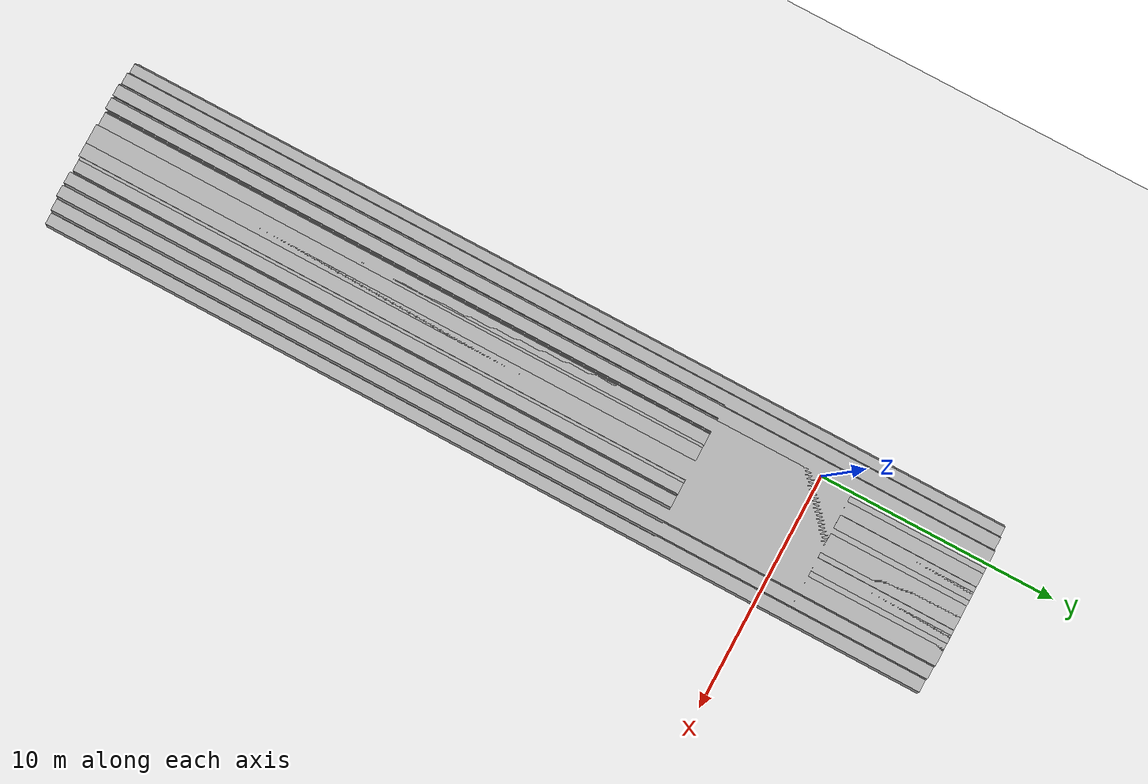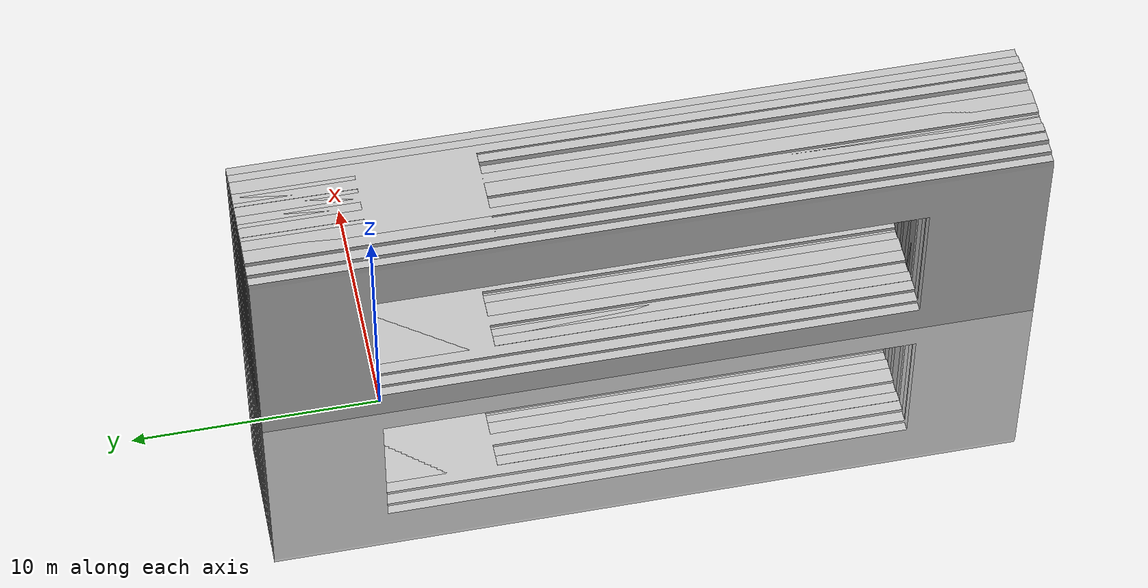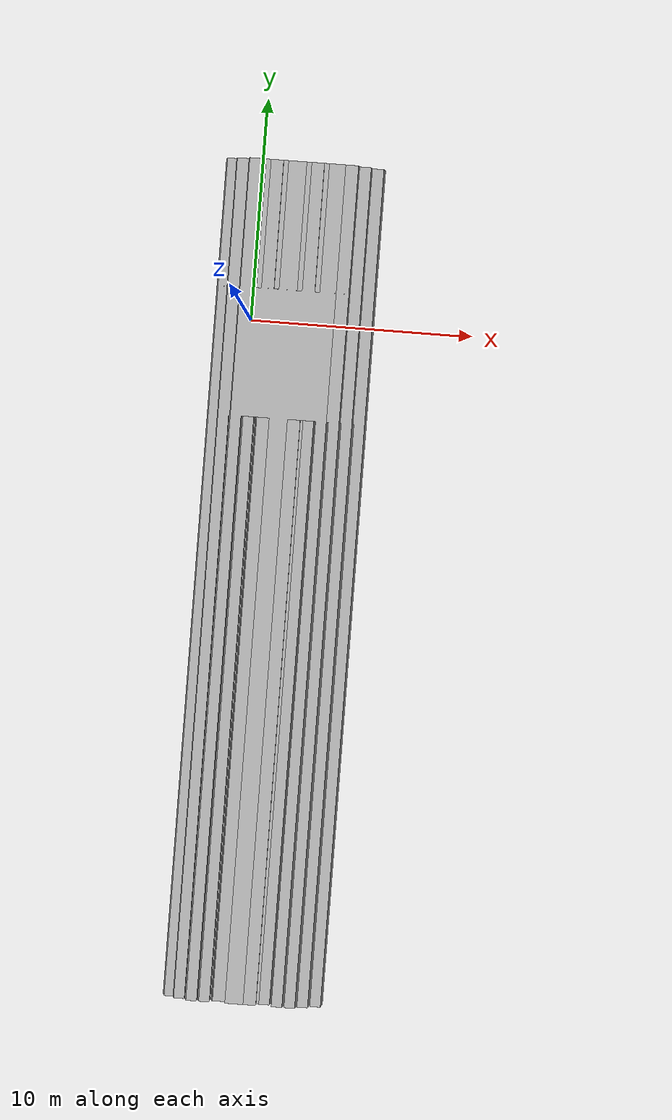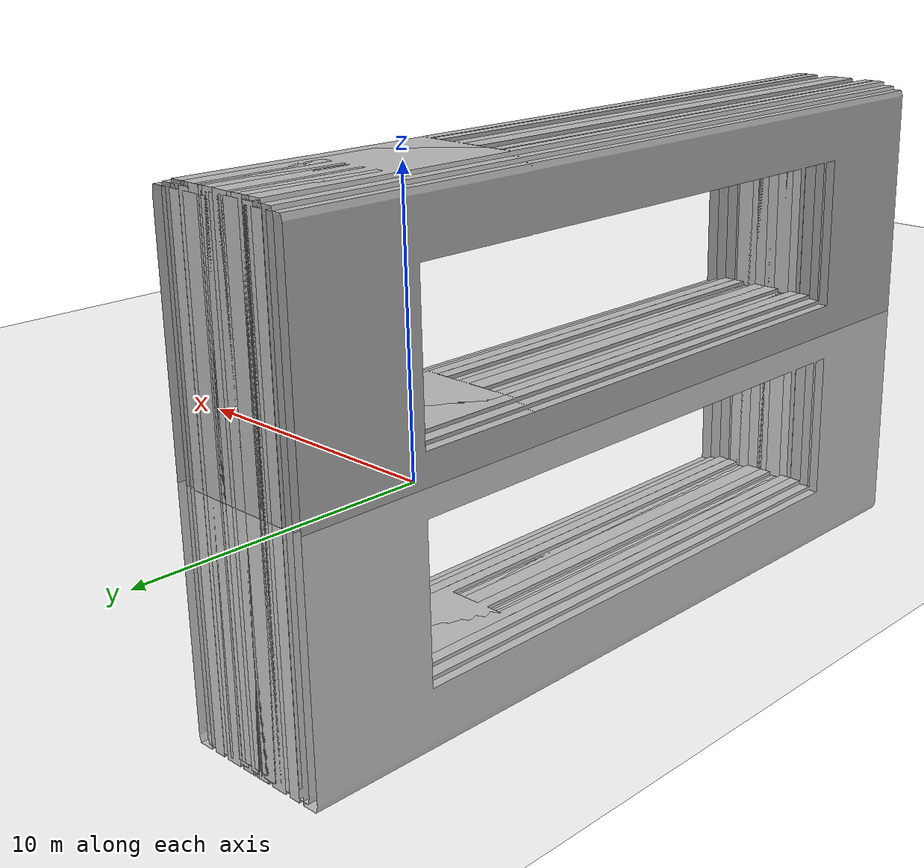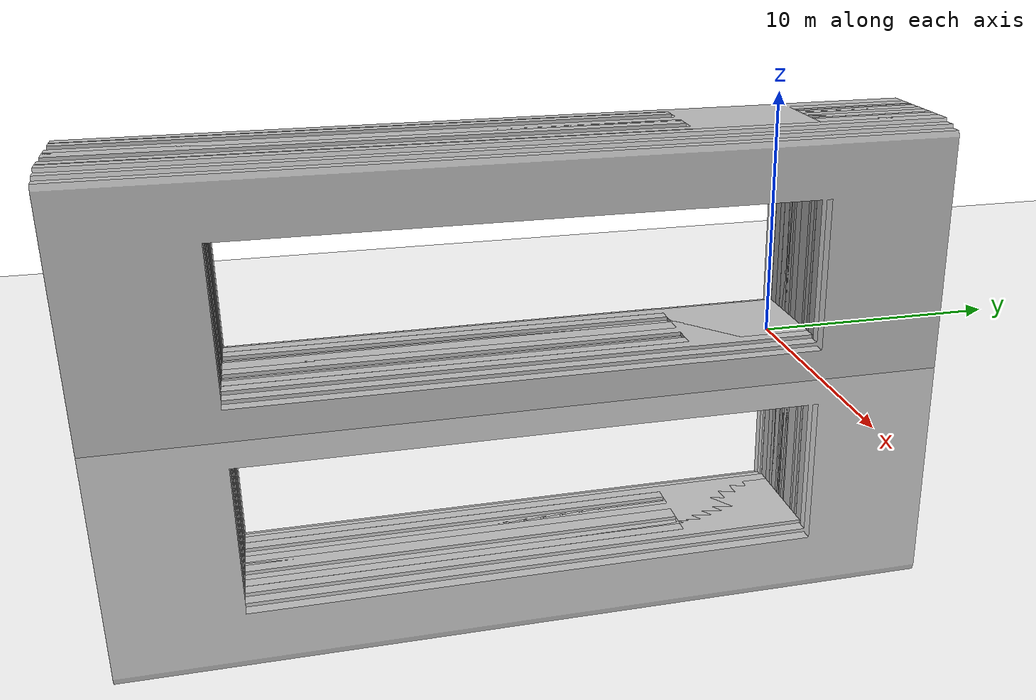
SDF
<?xml version="1.0" ?>
<sdf version="1.4">
  <world name="default">
    <physics type='ode'>
      <gravity>0 0 -9.81</gravity>
      <!-- max step size has to be a multiple of the desired task rate-->
      <max_step_size>0.001</max_step_size>
      <real_time_factor>1</real_time_factor>
    </physics>
    <!-- A global light source -->
    <include>
      <uri>model://sun</uri>
    </include>
    <!-- A ground plane -->
    <include>
      <uri>model://ground_plane</uri>
    </include>

    <!-- first stair starts at 0.8-->

    <include>
      <name>pallet1</name>
      <uri>model://pallet480x2000x140mm</uri>
      <pose>1.3 0 0 0 0 0</pose>
    </include>

    <include>
      <name>pallet2</name>
      <uri>model://pallet480x2000x140mm</uri>
      <pose>1.68 0 0.14 0 0 0 </pose>
    </include>

    <include>
      <name>pallet3</name>
      <uri>model://pallet480x2000x140mm</uri>
      <pose>2.16 0 0.28 0 0 0 </pose>
    </include>

    <include>
      <name>pallet3</name>
      <uri>model://pallet480x2000x140mm</uri>
      <pose>2.64 0 0.28 0 0 0 </pose>
    </include>

    <!-- second stair starts at 2.72-->

    <include>
      <name>pallet4</name>
      <uri>model://pallet480x2000x140mm</uri>
      <pose>3.12 0 0.14 0 0 0</pose>
    </include>

    <include>
      <name>pallet5</name>
      <uri>model://pallet480x2000x140mm</uri>
      <pose>3.6 0 0.0 0 0 0 </pose>
    </include>

  </world>
</sdf>

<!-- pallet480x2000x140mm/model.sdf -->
<sdf version="1.4">

	<model name="pallet480x2000x140mm">
		<static>true</static>
		<link name="link">
                        <pose>0 0 0.06 0 0 0</pose>
			<collision name="collision">
				<geometry>
					<mesh>
						<uri>model://pallet480x2000x140mm/mesh/pallet.dae</uri>
						<!-- original size = 1.016 x 0.090678 x 0.090678 m -->
						<!-- final size = 0.48 x 1 x 0.14 m -->
                                                <scale>0.472 22.028 1.5439</scale>
					</mesh>
				</geometry>

                        </collision>
			<visual name="visual">
				<geometry>
					<mesh>
						<uri>model://pallet480x2000x140mm/mesh/pallet.dae</uri>
						<!-- original size = 1.016 x 0.090678 x 0.090678 m -->
						<!-- final size = 0.48 x 1 x 0.14 m -->
                                                <scale>0.472 22.028 1.5439</scale>
					</mesh>
				</geometry>
			</visual>
		</link>
	</model>
</sdf>
